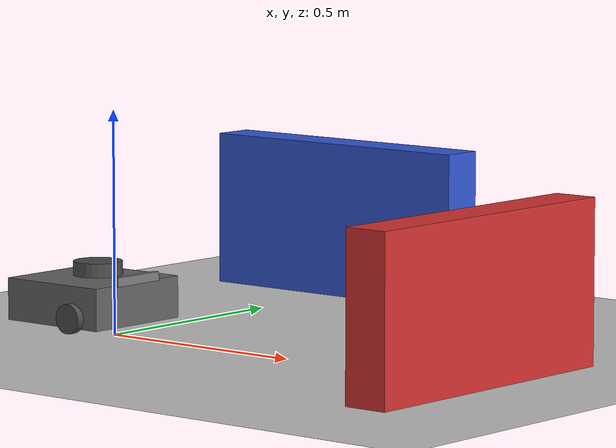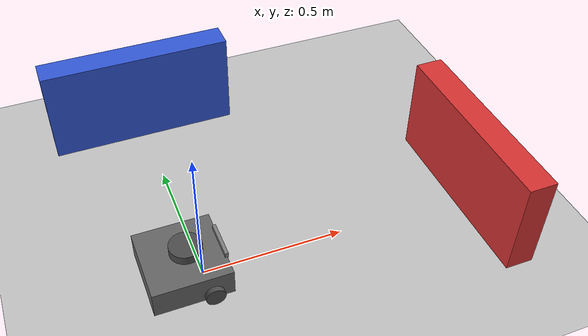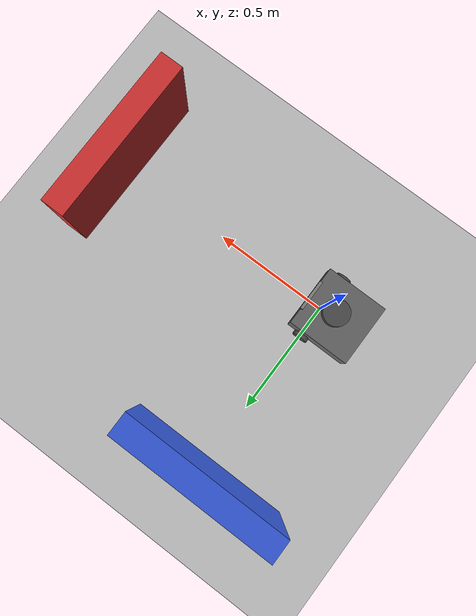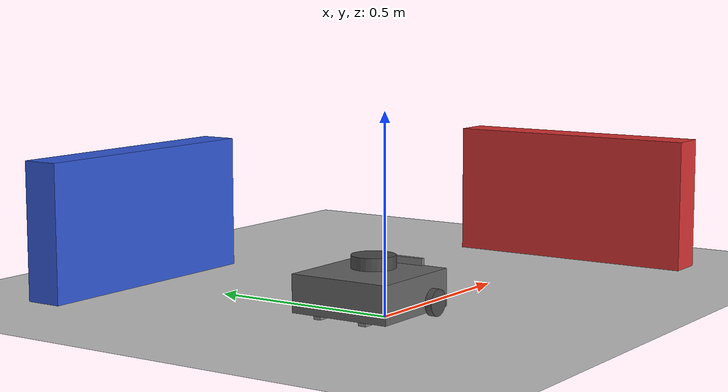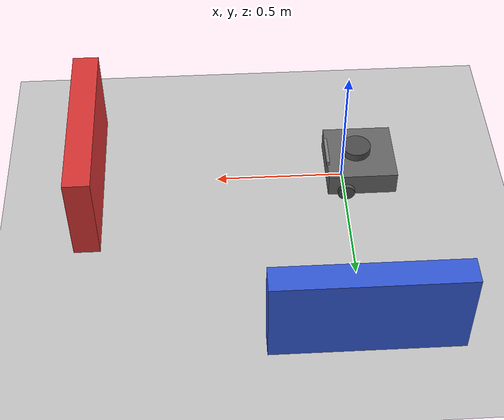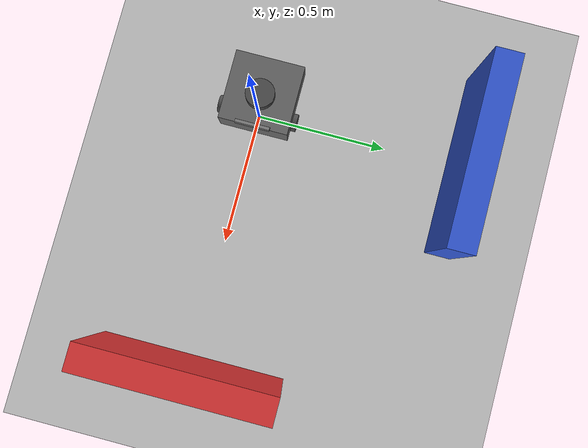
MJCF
<?xml version='1.0' encoding='utf-8'?>
<mujoco model="turtlebot3_waffle_minimal_world">
  <compiler angle="radian" />
  <option timestep="0.001" gravity="0 0 -9.81" integrator="implicit" />
  <visual>
    <global offwidth="320" offheight="240" />
    <map znear="0.05" zfar="10" />
  </visual>
  <asset>
    <texture name="minimal_grid" type="2d" builtin="checker" width="256" height="256" rgb1="0.92 0.92 0.92" rgb2="0.62 0.62 0.62" />
    <material name="minimal_grid" texture="minimal_grid" texrepeat="4 4" texuniform="true" reflectance="0.1" />
  </asset>
  <worldbody>
    <geom name="ground" type="plane" size="4 4 0.05" material="minimal_grid" friction="1.0" />
    <geom name="front_marker" type="box" pos="1.0 0 0.18" size="0.05 0.35 0.18" rgba="0.85 0.2 0.2 1" />
    <geom name="side_marker" type="box" pos="0 0.8 0.18" size="0.35 0.05 0.18" rgba="0.2 0.35 0.85 1" />
    <light name="top_light" pos="0 0 3" dir="0 0 -1" diffuse="0.8 0.8 0.8" />
    <camera name="overview" pos="1.6 -2.1 1.3" xyaxes="0.8 0.6 0 -0.35 0.47 0.81" />
    <body name="base_footprint" pos="0 0 0.02">
      <freejoint />
      <body name="base_link" pos="0 0 0.01">
        <inertial pos="0 0 0" quat="0.602478 0.382697 -0.591491 0.375103" mass="1.37291" diaginertia="0.0146148 0.00872051 0.00859719" />
        <geom size="0.133 0.133 0.047" pos="-0.064 0 0.047" type="box" rgba="0.4 0.4 0.4 1" />
        <body name="wheel_left_link" pos="0 0.144 0.023" quat="0.707388 -0.706825 0 0">
          <inertial pos="0 0 0" quat="-0.000890159 0.706886 0.000889646 0.707326" mass="0.0284989" diaginertia="2.07126e-05 1.11924e-05 1.11756e-05" />
          <joint name="wheel_left_joint" pos="0 0 0" axis="0 0 1" />
          <geom size="0.033 0.009" type="cylinder" rgba="0.3 0.3 0.3 1" />
        </body>
        <body name="wheel_right_link" pos="0 -0.144 0.023" quat="0.707388 -0.706825 0 0">
          <inertial pos="0 0 0" quat="-0.000890159 0.706886 0.000889646 0.707326" mass="0.0284989" diaginertia="2.07126e-05 1.11924e-05 1.11756e-05" />
          <joint name="wheel_right_joint" pos="0 0 0" axis="0 0 1" />
          <geom size="0.033 0.009" type="cylinder" rgba="0.3 0.3 0.3 1" />
        </body>
        <body name="caster_back_right_link" pos="-0.177 -0.064 -0.004" quat="0.707388 -0.706825 0 0">
          <inertial pos="0 0 0" mass="0.005" diaginertia="0.001 0.001 0.001" />
          <geom size="0.015 0.0045 0.01" pos="0 0.001 0" type="box" />
        </body>
        <body name="caster_back_left_link" pos="-0.177 0.064 -0.004" quat="0.707388 -0.706825 0 0">
          <inertial pos="0 0 0" mass="0.005" diaginertia="0.001 0.001 0.001" />
          <geom size="0.015 0.0045 0.01" pos="0 0.001 0" type="box" />
        </body>
        <body name="imu_link" pos="0 0 0.068" />
        <body name="base_scan" pos="-0.064 0 0.122">
          <inertial pos="0 0 0" mass="0.114" diaginertia="0.001 0.001 0.001" />
          <geom size="0.055 0.01575" pos="0.015 0 -0.0065" type="cylinder" rgba="0.3 0.3 0.3 1" />
        </body>
        <body name="camera_link" pos="0.064 -0.065 0.094">
          <geom size="0.006 0.066 0.01" pos="0.003 0.065 0.007" type="box" />
          <body name="camera_rgb_frame" pos="0.005 0.018 0.013">
            <body name="camera_rgb_optical_frame" quat="0.500398 -0.5 0.499602 -0.5" />
          </body>
          <body name="camera_depth_frame" pos="0.005 0.028 0.013">
            <body name="camera_depth_optical_frame" quat="0.500398 -0.5 0.499602 -0.5" />
          </body>
        </body>
      </body>
    </body>
  </worldbody>
  <actuator>
    <velocity name="left_motor" joint="wheel_left_joint" ctrllimited="true" ctrlrange="-12 12" kv="0.75" />
    <velocity name="right_motor" joint="wheel_right_joint" ctrllimited="true" ctrlrange="-12 12" kv="0.75" />
  </actuator>
</mujoco>
